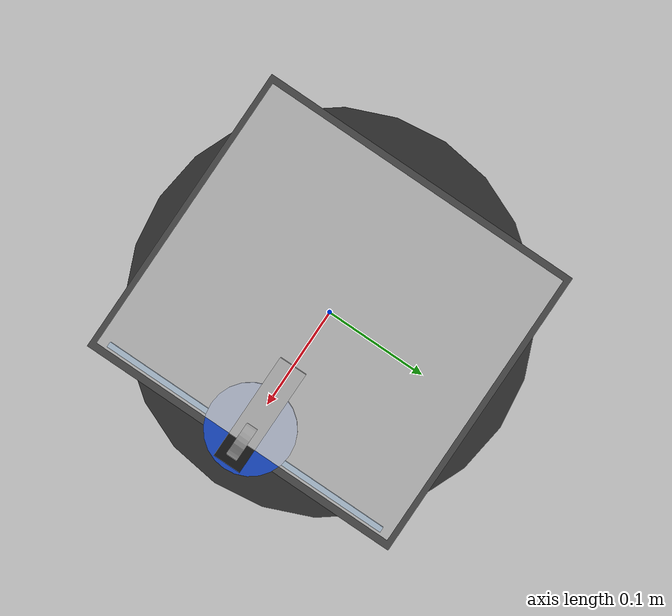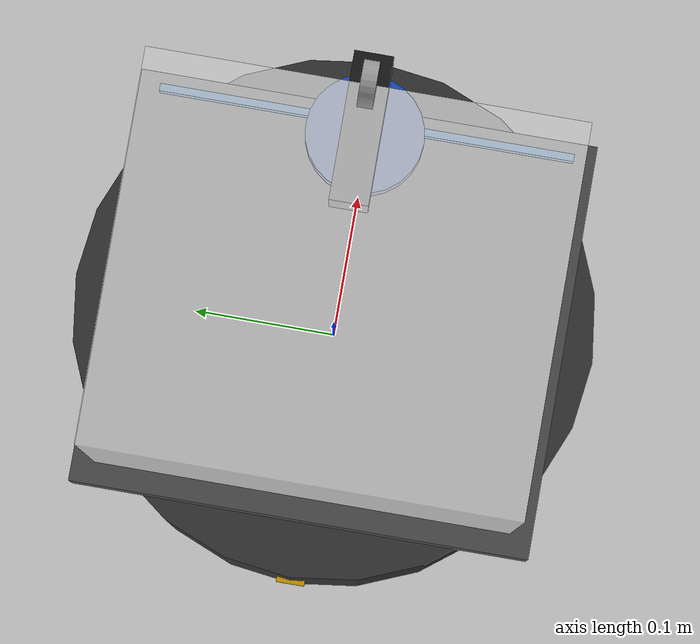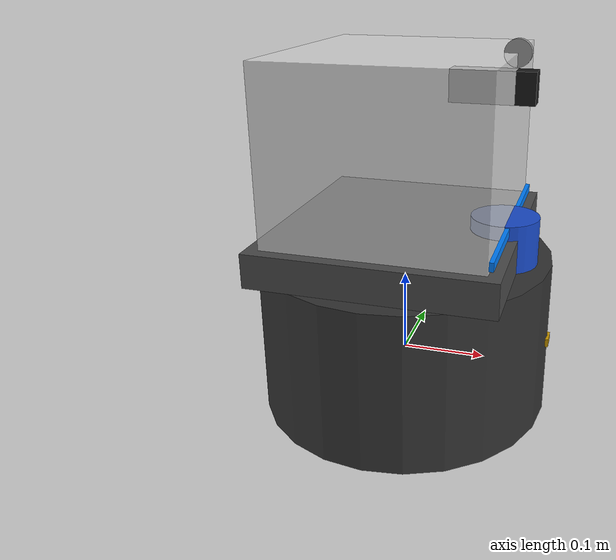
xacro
<?xml version="1.0"?>
<robot name="hospital_turtlebot4" xmlns:xacro="http://www.ros.org/wiki/xacro">

  <!-- Namespacing support for multi-robot -->
  <xacro:arg name="robot_name"      default=""/>
  <xacro:arg name="namespace"       default=""/>

  <xacro:property name="namespace"  value="$(arg namespace)"/>

  <!-- ==================== INCLUDE COMPONENTS ================== -->
  <xacro:include filename="$(find hospital_robot_description)/urdf/components/base.xacro"/>
  <xacro:include filename="$(find hospital_robot_description)/urdf/components/sensors.xacro"/>
  <xacro:include filename="$(find hospital_robot_description)/urdf/components/payload.xacro"/>

  <!-- ==================== GLOBAL GAZEBO PROPERTIES ============ -->
  <gazebo>
    <plugin filename="gz-sim-sensors-system"
            name="gz::sim::systems::Sensors">
      <render_engine>ogre2</render_engine>
    </plugin>
  </gazebo>

  <gazebo>
    <plugin filename="gz-sim-imu-system"
            name="gz::sim::systems::Imu"/>
  </gazebo>

  <!-- ==================== BASE LINK MATERIAL ================== -->
  <gazebo reference="base_link">
    <material>Gazebo/DarkGrey</material>
    <mu1>0.8</mu1>
    <mu2>0.8</mu2>
  </gazebo>

  <!-- ==================== PAYLOAD BOX MATERIAL ================ -->
  <gazebo reference="payload_box_link">
    <material>Gazebo/White</material>
  </gazebo>

</robot>

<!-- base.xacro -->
<robot xmlns:xacro="http://www.ros.org/wiki/xacro">

  <xacro:property name="base_radius"       value="0.1775"/>
  <xacro:property name="base_height"       value="0.192"/>
  <xacro:property name="base_mass"         value="4.0"/>

  <xacro:property name="wheel_radius"      value="0.0352"/>
  <xacro:property name="wheel_width"       value="0.0182"/>
  <xacro:property name="wheel_mass"        value="0.1"/>
  <xacro:property name="wheel_separation"  value="0.233"/>

  <xacro:property name="caster_radius"     value="0.015"/>
  <xacro:property name="caster_mass"       value="0.05"/>

  <!-- ==================== INERTIA MACROS ======================= -->
  <xacro:macro name="cylinder_inertia" params="mass radius length">
    <inertial>
      <mass value="${mass}"/>
      <inertia
        ixx="${(mass*(3*radius*radius + length*length))/12}"
        ixy="0" ixz="0"
        iyy="${(mass*(3*radius*radius + length*length))/12}"
        iyz="0"
        izz="${(mass*radius*radius)/2}"/>
    </inertial>
  </xacro:macro>

  <xacro:macro name="sphere_inertia" params="mass radius">
    <inertial>
      <mass value="${mass}"/>
      <inertia
        ixx="${(2*mass*radius*radius)/5}"
        ixy="0" ixz="0"
        iyy="${(2*mass*radius*radius)/5}"
        iyz="0"
        izz="${(2*mass*radius*radius)/5}"/>
    </inertial>
  </xacro:macro>

  <xacro:macro name="box_inertia" params="mass x y z">
    <inertial>
      <mass value="${mass}"/>
      <inertia
        ixx="${(mass*(y*y + z*z))/12}"
        ixy="0" ixz="0"
        iyy="${(mass*(x*x + z*z))/12}"
        iyz="0"
        izz="${(mass*(x*x + y*y))/12}"/>
    </inertial>
  </xacro:macro>

  <!-- ==================== BASE FOOTPRINT ======================= -->
  <link name="base_footprint"/>

  <joint name="base_footprint_joint" type="fixed">
    <parent link="base_footprint"/>
    <child  link="base_link"/>
    <origin xyz="0 0 ${wheel_radius}" rpy="0 0 0"/>
  </joint>

  <!-- ==================== BASE LINK ============================ -->
  <link name="base_link">
    <visual>
      <origin xyz="0 0 0" rpy="0 0 0"/>
      <geometry>
        <cylinder radius="${base_radius}" length="${base_height}"/>
      </geometry>
      <material name="dark_gray">
        <color rgba="0.2 0.2 0.2 1.0"/>
      </material>
    </visual>
    <collision>
      <origin xyz="0 0 0" rpy="0 0 0"/>
      <geometry>
        <cylinder radius="${base_radius}" length="${base_height}"/>
      </geometry>
    </collision>
    <xacro:cylinder_inertia mass="${base_mass}" radius="${base_radius}" length="${base_height}"/>
  </link>

  <!-- ==================== WHEEL MACRO ========================== -->
  <xacro:macro name="wheel" params="name side y_offset">
    <link name="${name}_wheel_link">
      <visual>
        <origin xyz="0 0 0" rpy="${pi/2} 0 0"/>
        <geometry>
          <cylinder radius="${wheel_radius}" length="${wheel_width}"/>
        </geometry>
        <material name="black">
          <color rgba="0.05 0.05 0.05 1.0"/>
        </material>
      </visual>
      <collision>
        <origin xyz="0 0 0" rpy="${pi/2} 0 0"/>
        <geometry>
          <cylinder radius="${wheel_radius}" length="${wheel_width}"/>
        </geometry>
      </collision>
      <xacro:cylinder_inertia mass="${wheel_mass}" radius="${wheel_radius}" length="${wheel_width}"/>
    </link>

    <joint name="${name}_wheel_joint" type="continuous">
      <parent link="base_link"/>
      <child  link="${name}_wheel_link"/>
      <origin xyz="0 ${y_offset} ${-base_height/2 + wheel_radius}" rpy="0 0 0"/>
      <axis xyz="0 1 0"/>
      <dynamics damping="0.1" friction="0.1"/>
    </joint>

    <gazebo reference="${name}_wheel_link">
      <mu1>1.0</mu1>
      <mu2>0.5</mu2>
      <kp>1000000.0</kp>
      <kd>100.0</kd>
      <material>Gazebo/Black</material>
    </gazebo>
  </xacro:macro>

  <xacro:wheel name="left"  side="left"  y_offset=" ${wheel_separation/2}"/>
  <xacro:wheel name="right" side="right" y_offset="-${wheel_separation/2}"/>

  <!-- ==================== CASTER WHEELS ======================= -->
  <xacro:macro name="caster" params="name x_offset y_offset">
    <link name="${name}_caster_link">
      <visual>
        <geometry><sphere radius="${caster_radius}"/></geometry>
        <material name="gray"><color rgba="0.5 0.5 0.5 1.0"/></material>
      </visual>
      <collision>
        <geometry><sphere radius="${caster_radius}"/></geometry>
      </collision>
      <xacro:sphere_inertia mass="${caster_mass}" radius="${caster_radius}"/>
    </link>
    <joint name="${name}_caster_joint" type="fixed">
      <parent link="base_link"/>
      <child  link="${name}_caster_link"/>
      <origin xyz="${x_offset} ${y_offset} ${-base_height/2 + caster_radius}" rpy="0 0 0"/>
    </joint>
    <gazebo reference="${name}_caster_link">
      <mu1>0.0</mu1>
      <mu2>0.0</mu2>
      <material>Gazebo/Grey</material>
    </gazebo>
  </xacro:macro>

  <xacro:caster name="front_left"  x_offset=" 0.12" y_offset=" 0.10"/>
  <xacro:caster name="front_right" x_offset=" 0.12" y_offset="-0.10"/>
  <xacro:caster name="rear_left"   x_offset="-0.12" y_offset=" 0.10"/>
  <xacro:caster name="rear_right"  x_offset="-0.12" y_offset="-0.10"/>

  <!-- ==================== GAZEBO DIFF DRIVE =================== -->
  <gazebo>
    <plugin filename="gz-sim-diff-drive-system"
            name="gz::sim::systems::DiffDrive">
      <left_joint>left_wheel_joint</left_joint>
      <right_joint>right_wheel_joint</right_joint>
      <wheel_separation>${wheel_separation}</wheel_separation>
      <wheel_radius>${wheel_radius}</wheel_radius>
      <odom_publish_frequency>30</odom_publish_frequency>
      <topic>cmd_vel</topic>
      <odom_topic>odom</odom_topic>
      <tf_topic>tf</tf_topic>
      <frame_id>odom</frame_id>
      <child_frame_id>base_footprint</child_frame_id>
      <max_linear_acceleration>1.0</max_linear_acceleration>
      <max_angular_acceleration>2.0</max_angular_acceleration>
    </plugin>
  </gazebo>

  <!-- Joint state publisher for wheels -->
  <gazebo>
    <plugin filename="gz-sim-joint-state-publisher-system"
            name="gz::sim::systems::JointStatePublisher">
      <joint_name>left_wheel_joint</joint_name>
      <joint_name>right_wheel_joint</joint_name>
    </plugin>
  </gazebo>

</robot>

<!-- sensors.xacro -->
<robot xmlns:xacro="http://www.ros.org/wiki/xacro">

  <xacro:property name="lidar_x"      value="0.12"/>
  <xacro:property name="lidar_y"      value="0.0"/>
  <xacro:property name="lidar_z"      value="0.12"/>
  <xacro:property name="camera_x"     value="0.10"/>
  <xacro:property name="camera_y"     value="0.0"/>
  <xacro:property name="camera_z"     value="0.30"/>
  <xacro:property name="imu_x"        value="0.0"/>
  <xacro:property name="imu_y"        value="0.0"/>
  <xacro:property name="imu_z"        value="0.05"/>

  <!-- ==================== 2D LIDAR ============================= -->
  <link name="laser_frame">
    <visual>
      <origin xyz="0 0 0" rpy="0 0 0"/>
      <geometry><cylinder radius="0.04" length="0.065"/></geometry>
      <material name="blue"><color rgba="0.1 0.3 0.8 1.0"/></material>
    </visual>
    <collision>
      <origin xyz="0 0 0" rpy="0 0 0"/>
      <geometry><cylinder radius="0.04" length="0.065"/></geometry>
    </collision>
    <inertial>
      <mass value="0.17"/>
      <inertia ixx="0.001" ixy="0" ixz="0" iyy="0.001" iyz="0" izz="0.001"/>
    </inertial>
  </link>

  <joint name="laser_joint" type="fixed">
    <parent link="base_link"/>
    <child  link="laser_frame"/>
    <origin xyz="${lidar_x} ${lidar_y} ${lidar_z}" rpy="0 0 0"/>
  </joint>

  <gazebo reference="laser_frame">
    <sensor name="lidar" type="gpu_lidar">
      <topic>scan</topic>
      <update_rate>10</update_rate>
      <always_on>true</always_on>
      <visualize>false</visualize>
      <lidar>
        <scan>
          <horizontal>
            <samples>360</samples>
            <resolution>1</resolution>
            <min_angle>-3.14159</min_angle>
            <max_angle> 3.14159</max_angle>
          </horizontal>
        </scan>
        <range>
          <min>0.15</min>
          <max>12.0</max>
          <resolution>0.01</resolution>
        </range>
        <noise>
          <type>gaussian</type>
          <mean>0.0</mean>
          <stddev>0.01</stddev>
        </noise>
      </lidar>
    </sensor>
  </gazebo>

  <!-- ==================== IMU ================================== -->
  <link name="imu_link">
    <visual>
      <geometry><box size="0.02 0.02 0.005"/></geometry>
      <material name="green"><color rgba="0.0 0.8 0.0 1.0"/></material>
    </visual>
    <collision>
      <geometry><box size="0.02 0.02 0.005"/></geometry>
    </collision>
    <inertial>
      <mass value="0.005"/>
      <inertia ixx="0.00001" ixy="0" ixz="0" iyy="0.00001" iyz="0" izz="0.00001"/>
    </inertial>
  </link>

  <joint name="imu_joint" type="fixed">
    <parent link="base_link"/>
    <child  link="imu_link"/>
    <origin xyz="${imu_x} ${imu_y} ${imu_z}" rpy="0 0 0"/>
  </joint>

  <gazebo reference="imu_link">
    <sensor name="imu_sensor" type="imu">
      <topic>imu</topic>
      <update_rate>200</update_rate>
      <always_on>true</always_on>
      <imu>
        <angular_velocity>
          <x><noise type="gaussian"><mean>0.0</mean><stddev>0.0002</stddev></noise></x>
          <y><noise type="gaussian"><mean>0.0</mean><stddev>0.0002</stddev></noise></y>
          <z><noise type="gaussian"><mean>0.0</mean><stddev>0.0002</stddev></noise></z>
        </angular_velocity>
        <linear_acceleration>
          <x><noise type="gaussian"><mean>0.0</mean><stddev>0.017</stddev></noise></x>
          <y><noise type="gaussian"><mean>0.0</mean><stddev>0.017</stddev></noise></y>
          <z><noise type="gaussian"><mean>0.0</mean><stddev>0.017</stddev></noise></z>
        </linear_acceleration>
      </imu>
    </sensor>
  </gazebo>

  <!-- ==================== RGB-D CAMERA ======================== -->
  <link name="camera_link">
    <visual>
      <origin xyz="0 0 0" rpy="0 0 0"/>
      <geometry><box size="0.095 0.025 0.036"/></geometry>
      <material name="black_camera"><color rgba="0.1 0.1 0.1 1.0"/></material>
    </visual>
    <collision>
      <origin xyz="0 0 0" rpy="0 0 0"/>
      <geometry><box size="0.095 0.025 0.036"/></geometry>
    </collision>
    <inertial>
      <mass value="0.072"/>
      <inertia ixx="0.0001" ixy="0" ixz="0" iyy="0.0001" iyz="0" izz="0.0001"/>
    </inertial>
  </link>

  <joint name="camera_joint" type="fixed">
    <parent link="base_link"/>
    <child  link="camera_link"/>
    <origin xyz="${camera_x} ${camera_y} ${camera_z}" rpy="0 0 0"/>
  </joint>

  <!-- Camera optical frame -->
  <link name="camera_optical_link"/>
  <joint name="camera_optical_joint" type="fixed">
    <parent link="camera_link"/>
    <child  link="camera_optical_link"/>
    <origin xyz="0 0 0" rpy="${-pi/2} 0 ${-pi/2}"/>
  </joint>

  <gazebo reference="camera_link">
    <!-- RGB Camera -->
    <sensor name="rgb_camera" type="camera">
      <topic>camera/image_raw</topic>
      <update_rate>30</update_rate>
      <always_on>true</always_on>
      <camera>
        <horizontal_fov>1.2217</horizontal_fov>
        <image>
          <width>640</width>
          <height>480</height>
          <format>R8G8B8</format>
        </image>
        <clip>
          <near>0.1</near>
          <far>100</far>
        </clip>
        <noise>
          <type>gaussian</type>
          <mean>0.0</mean>
          <stddev>0.007</stddev>
        </noise>
      </camera>
    </sensor>
    <!-- Depth Camera -->
    <sensor name="depth_camera" type="depth_camera">
      <topic>camera/depth/image_raw</topic>
      <update_rate>15</update_rate>
      <always_on>true</always_on>
      <camera>
        <horizontal_fov>1.2217</horizontal_fov>
        <image>
          <width>640</width>
          <height>480</height>
        </image>
        <clip>
          <near>0.1</near>
          <far>10.0</far>
        </clip>
      </camera>
    </sensor>
  </gazebo>

  <!-- ==================== ULTRASONIC SENSORS ================== -->
  <xacro:macro name="ultrasonic" params="name x y angle">
    <link name="${name}_sonar_link">
      <visual>
        <geometry><box size="0.01 0.02 0.01"/></geometry>
        <material name="sonar_color"><color rgba="0.8 0.6 0.0 1.0"/></material>
      </visual>
      <collision>
        <geometry><box size="0.01 0.02 0.01"/></geometry>
      </collision>
      <inertial>
        <mass value="0.001"/>
        <inertia ixx="0.000001" ixy="0" ixz="0" iyy="0.000001" iyz="0" izz="0.000001"/>
      </inertial>
    </link>
    <joint name="${name}_sonar_joint" type="fixed">
      <parent link="base_link"/>
      <child  link="${name}_sonar_link"/>
      <origin xyz="${x} ${y} 0.0" rpy="0 0 ${angle}"/>
    </joint>
  </xacro:macro>

  <xacro:ultrasonic name="front"       x=" 0.175" y=" 0.0"   angle="0.0"/>
  <xacro:ultrasonic name="front_left"  x=" 0.12"  y=" 0.12"  angle="0.785"/>
  <xacro:ultrasonic name="front_right" x=" 0.12"  y="-0.12"  angle="-0.785"/>
  <xacro:ultrasonic name="rear"        x="-0.175" y=" 0.0"   angle="${pi}"/>

</robot>

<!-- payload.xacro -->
<robot xmlns:xacro="http://www.ros.org/wiki/xacro">

  <xacro:property name="box_width"   value="0.28"/>
  <xacro:property name="box_depth"   value="0.25"/>
  <xacro:property name="box_height"  value="0.20"/>
  <xacro:property name="box_mass"    value="0.8"/>
  <xacro:property name="box_z"       value="0.22"/>

  <xacro:property name="frame_width" value="0.31"/>
  <xacro:property name="frame_depth" value="0.28"/>
  <xacro:property name="frame_height" value="0.04"/>

  <!-- ==================== SUPPORT FRAME ======================= -->
  <link name="payload_frame_link">
    <visual>
      <origin xyz="0 0 0" rpy="0 0 0"/>
      <geometry>
        <box size="${frame_depth} ${frame_width} ${frame_height}"/>
      </geometry>
      <material name="frame_color">
        <color rgba="0.3 0.3 0.3 1.0"/>
      </material>
    </visual>
    <collision>
      <origin xyz="0 0 0" rpy="0 0 0"/>
      <geometry>
        <box size="${frame_depth} ${frame_width} ${frame_height}"/>
      </geometry>
    </collision>
    <inertial>
      <mass value="0.3"/>
      <inertia ixx="0.001" ixy="0" ixz="0" iyy="0.001" iyz="0" izz="0.001"/>
    </inertial>
  </link>

  <joint name="payload_frame_joint" type="fixed">
    <parent link="base_link"/>
    <child  link="payload_frame_link"/>
    <origin xyz="0 0 ${0.096 + frame_height/2}" rpy="0 0 0"/>
  </joint>

  <!-- ==================== DELIVERY BOX ======================== -->
  <link name="payload_box_link">
    <visual>
      <origin xyz="0 0 0" rpy="0 0 0"/>
      <geometry>
        <box size="${box_depth} ${box_width} ${box_height}"/>
      </geometry>
      <material name="box_color">
        <color rgba="0.9 0.9 0.9 0.85"/>
      </material>
    </visual>
    <collision>
      <origin xyz="0 0 0" rpy="0 0 0"/>
      <geometry>
        <box size="${box_depth} ${box_width} ${box_height}"/>
      </geometry>
    </collision>
    <inertial>
      <mass value="${box_mass}"/>
      <inertia
        ixx="${(box_mass*(box_width*box_width + box_height*box_height))/12}"
        ixy="0" ixz="0"
        iyy="${(box_mass*(box_depth*box_depth + box_height*box_height))/12}"
        iyz="0"
        izz="${(box_mass*(box_depth*box_depth + box_width*box_width))/12}"/>
    </inertial>
  </link>

  <joint name="payload_box_joint" type="fixed">
    <parent link="payload_frame_link"/>
    <child  link="payload_box_link"/>
    <origin xyz="0 0 ${frame_height/2 + box_height/2}" rpy="0 0 0"/>
  </joint>

  <!-- ==================== STATUS LED STRIP ==================== -->
  <link name="led_strip_front_link">
    <visual>
      <origin xyz="0 0 0" rpy="0 0 0"/>
      <geometry><box size="0.005 ${box_width} 0.01"/></geometry>
      <material name="led_idle"><color rgba="0.0 0.5 1.0 1.0"/></material>
    </visual>
    <collision>
      <geometry><box size="0.005 ${box_width} 0.01"/></geometry>
    </collision>
    <inertial>
      <mass value="0.01"/>
      <inertia ixx="0.00001" ixy="0" ixz="0" iyy="0.00001" iyz="0" izz="0.00001"/>
    </inertial>
  </link>

  <joint name="led_front_joint" type="fixed">
    <parent link="payload_box_link"/>
    <child  link="led_strip_front_link"/>
    <origin xyz="${box_depth/2 + 0.003} 0 ${-box_height/2 + 0.01}" rpy="0 0 0"/>
  </joint>

  <!-- ==================== PAYLOAD LATCH (decorative) ========== -->
  <link name="payload_latch_link">
    <visual>
      <origin xyz="0 0 0" rpy="0 0 0"/>
      <geometry><cylinder radius="0.015" length="0.01"/></geometry>
      <material name="latch_color"><color rgba="0.6 0.6 0.6 1.0"/></material>
    </visual>
    <collision>
      <geometry><cylinder radius="0.015" length="0.01"/></geometry>
    </collision>
    <inertial>
      <mass value="0.02"/>
      <inertia ixx="0.00001" ixy="0" ixz="0" iyy="0.00001" iyz="0" izz="0.00001"/>
    </inertial>
  </link>

  <joint name="payload_latch_joint" type="fixed">
    <parent link="payload_box_link"/>
    <child  link="payload_latch_link"/>
    <origin xyz="${box_depth/2} 0 ${box_height/2}" rpy="${pi/2} 0 0"/>
  </joint>

</robot>
